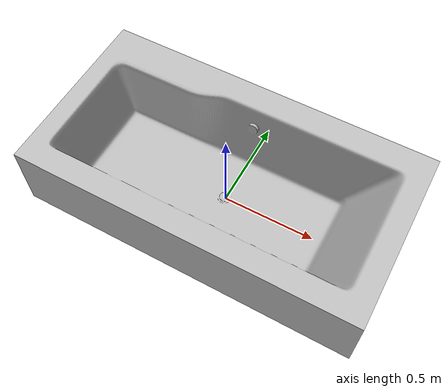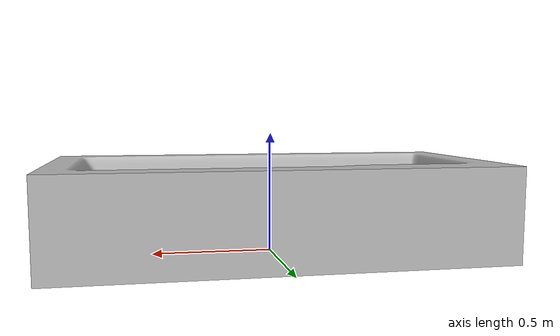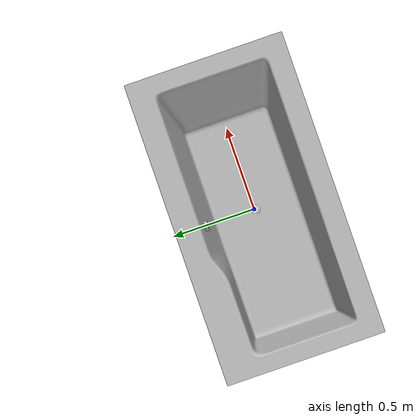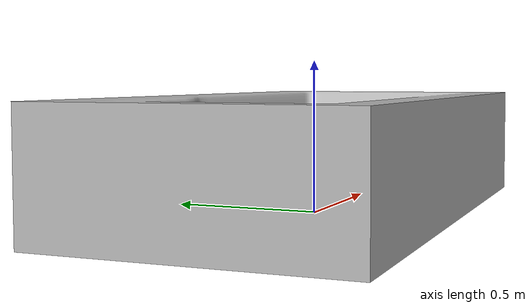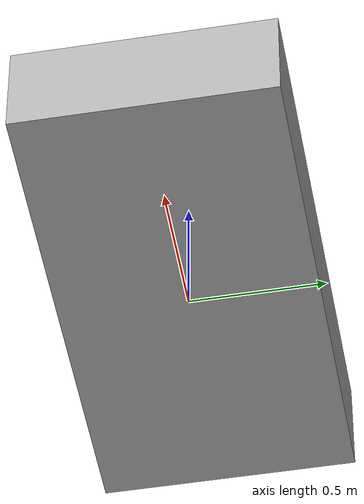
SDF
<?xml version='1.0'?>
<sdf version='1.6'>
  <model name='02_BathtubAlcove'>
    <link name='body'>
	  <inertial>
        <mass>55</mass>
        <pose frame=''>0 0 0 0 0 0</pose>
        <inertia>
          <ixx>3.9893333</ixx>
          <ixy>0</ixy>
          <ixz>0</ixz>
          <iyy>15.906</iyy>
          <iyz>0</iyz>
          <izz>17.783333</izz>
        </inertia>
      </inertial>
      <pose frame=''>0 0 0 0 -0 0</pose>
      <self_collide>0</self_collide>
      <kinematic>0</kinematic>
      <gravity>1</gravity>
      <visual name='visual'>
        <geometry>
          <mesh>
            <uri>model://BathtubAlcove_fde1f0b038f8_lod0/meshes/visual_LowPoly_02_BathtubAlcove.dae</uri>
          </mesh>
        </geometry>
		<meta> <layer> 1 </layer></meta>
      </visual>
      <collision name='collision_0'>
        <laser_retro>0</laser_retro>
        <max_contacts>10</max_contacts>
        <pose frame=''>0 0 0 0 -0 0</pose>
        <geometry>
          <mesh>
            <uri>model://BathtubAlcove_fde1f0b038f8_lod0/meshes/collision_02_BathtubAlcove.dae</uri>
            <scale>1 1 1</scale>
          </mesh>
        </geometry>
		<surface>
          <friction>
            <ode>
              <mu>0.6</mu>
              <mu2>0.6</mu2>
              <fdir1>0 0 0</fdir1>
              <slip1>0</slip1>
              <slip2>0</slip2>
            </ode>
            <torsional>
              <coefficient>1</coefficient>
              <patch_radius>0</patch_radius>
              <surface_radius>0</surface_radius>
              <use_patch_radius>1</use_patch_radius>
              <ode>
                <slip>0</slip>
              </ode>
            </torsional>
          </friction>
        </surface>
      </collision>
    </link>
    <static>true</static>
  </model>
</sdf>
